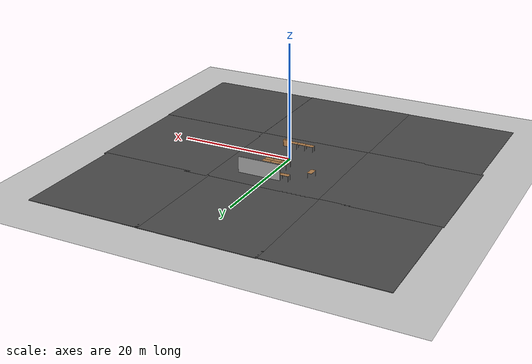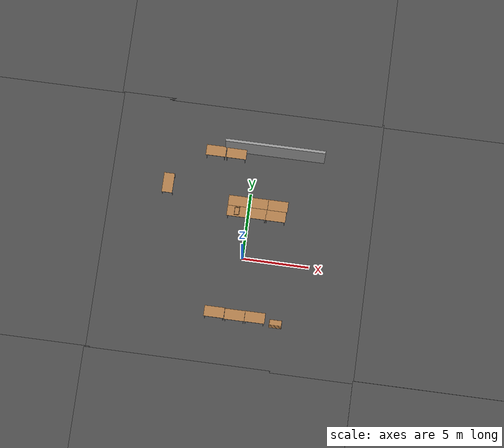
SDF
<sdf version="1.6">
 <world name="default">
  <light name="sun" type="directional">
   <pose>0 0 10 0 -0 0</pose>
   <diffuse>0.8 0.8 0.8 1</diffuse>
   <specular>0.2 0.2 0.2 1</specular>
   <attenuation>
    <range>1000</range>
    <constant>0.9</constant>
    <linear>0.01</linear>
    <quadratic>0.001</quadratic>
   </attenuation>
   <direction>-0.5 0.1 -0.9</direction>
  </light>
  <model name="ground_plane">
   <static>1</static>
   <link name="link">
    <collision name="collision">
     <geometry><plane><normal>0 0 1</normal><size>100 100</size></plane></geometry>
     <surface><friction><ode><mu>100</mu><mu2>50</mu2></ode></friction></surface>
    </collision>
    <visual name="visual">
     <cast_shadows>0</cast_shadows>
     <geometry><plane><normal>0 0 1</normal><size>100 100</size></plane></geometry>
     <material>
      <script><uri>file://media/materials/scripts/gazebo.material</uri><name>Gazebo/Grey</name></script>
     </material>
    </visual>
   </link>
  </model>
  <gravity>0 0 -9.8</gravity>
  <magnetic_field>6e-06 2.3e-05 -4.2e-05</magnetic_field>
  <atmosphere type="adiabatic"/>
  <physics name="default_physics" default="0" type="ode">
   <max_step_size>0.001</max_step_size>
   <real_time_factor>1</real_time_factor>
   <real_time_update_rate>1000</real_time_update_rate>
  </physics>
  <scene><ambient>0.4 0.4 0.4 1</ambient><background>0.7 0.7 0.7 1</background><shadows>1</shadows></scene>
  <spherical_coordinates>
   <surface_model>EARTH_WGS84</surface_model>
   <latitude_deg>0</latitude_deg>
   <longitude_deg>0</longitude_deg>
   <elevation>0</elevation>
   <heading_deg>0</heading_deg>
  </spherical_coordinates>
  <model name="table">
   <static>1</static>
   <link name="link">
    <collision name="surface">
     <pose>0 0 1 0 -0 0</pose>
     <geometry><box><size>1.5 0.8 0.03</size></box></geometry>
     <surface><friction><ode><mu>0.6</mu><mu2>0.6</mu2></ode></friction></surface>
    </collision>
    <visual name="visual1">
     <pose>0 0 1 0 -0 0</pose>
     <geometry><box><size>1.5 0.8 0.03</size></box></geometry>
     <material>
      <script><uri>file://media/materials/scripts/gazebo.material</uri><name>Gazebo/Wood</name></script>
     </material>
    </visual>
    <collision name="front_left_leg">
     <pose>0.68 0.38 0.5 0 -0 0</pose>
     <geometry><cylinder><radius>0.02</radius><length>1</length></cylinder></geometry>
    </collision>
    <visual name="front_left_leg">
     <pose>0.68 0.38 0.5 0 -0 0</pose>
     <geometry><cylinder><radius>0.02</radius><length>1</length></cylinder></geometry>
     <material>
      <script><uri>file://media/materials/scripts/gazebo.material</uri><name>Gazebo/Grey</name></script>
     </material>
    </visual>
    <collision name="front_right_leg">
     <pose>0.68 -0.38 0.5 0 -0 0</pose>
     <geometry><cylinder><radius>0.02</radius><length>1</length></cylinder></geometry>
    </collision>
    <visual name="front_right_leg">
     <pose>0.68 -0.38 0.5 0 -0 0</pose>
     <geometry><cylinder><radius>0.02</radius><length>1</length></cylinder></geometry>
     <material>
      <script><uri>file://media/materials/scripts/gazebo.material</uri><name>Gazebo/Grey</name></script>
     </material>
    </visual>
    <collision name="back_right_leg">
     <pose>-0.68 -0.38 0.5 0 -0 0</pose>
     <geometry><cylinder><radius>0.02</radius><length>1</length></cylinder></geometry>
    </collision>
    <visual name="back_right_leg">
     <pose>-0.68 -0.38 0.5 0 -0 0</pose>
     <geometry><cylinder><radius>0.02</radius><length>1</length></cylinder></geometry>
     <material>
      <script><uri>file://media/materials/scripts/gazebo.material</uri><name>Gazebo/Grey</name></script>
     </material>
    </visual>
    <collision name="back_left_leg">
     <pose>-0.68 0.38 0.5 0 -0 0</pose>
     <geometry><cylinder><radius>0.02</radius><length>1</length></cylinder></geometry>
    </collision>
    <visual name="back_left_leg">
     <pose>-0.68 0.38 0.5 0 -0 0</pose>
     <geometry><cylinder><radius>0.02</radius><length>1</length></cylinder></geometry>
     <material>
      <script><uri>file://media/materials/scripts/gazebo.material</uri><name>Gazebo/Grey</name></script>
     </material>
    </visual>
   </link>
   <pose>0.636841 4.14082 0 0 -0 0</pose>
  </model>
  <model name="bookshelf">
   <static>1</static>
   <link name="link">
    <inertial><mass>1</mass></inertial>
    <collision name="back">
     <pose>0 0.005 0.6 0 -0 0</pose>
     <geometry><box><size>0.9 0.01 1.2</size></box></geometry>
    </collision>
    <visual name="visual1">
     <pose>0 0.005 0.6 0 -0 0</pose>
     <geometry><box><size>0.9 0.01 1.2</size></box></geometry>
     <material>
      <script><uri>file://media/materials/scripts/gazebo.material</uri><name>Gazebo/Wood</name></script>
     </material>
    </visual>
    <collision name="left_side">
     <pose>0.45 -0.195 0.6 0 -0 0</pose>
     <geometry><box><size>0.02 0.4 1.2</size></box></geometry>
    </collision>
    <visual name="visual2">
     <pose>0.45 -0.195 0.6 0 -0 0</pose>
     <geometry><box><size>0.02 0.4 1.2</size></box></geometry>
     <material>
      <script><uri>file://media/materials/scripts/gazebo.material</uri><name>Gazebo/Wood</name></script>
     </material>
    </visual>
    <collision name="right_side">
     <pose>-0.45 -0.195 0.6 0 -0 0</pose>
     <geometry><box><size>0.02 0.4 1.2</size></box></geometry>
    </collision>
    <visual name="visual3">
     <pose>-0.45 -0.195 0.6 0 -0 0</pose>
     <geometry><box><size>0.02 0.4 1.2</size></box></geometry>
     <material>
      <script><uri>file://media/materials/scripts/gazebo.material</uri><name>Gazebo/Wood</name></script>
     </material>
    </visual>
    <collision name="bottom">
     <pose>0 -0.195 0.03 0 -0 0</pose>
     <geometry><box><size>0.88 0.4 0.06</size></box></geometry>
    </collision>
    <visual name="visual4">
     <pose>0 -0.195 0.03 0 -0 0</pose>
     <geometry><box><size>0.88 0.4 0.06</size></box></geometry>
     <material>
      <script><uri>file://media/materials/scripts/gazebo.material</uri><name>Gazebo/Wood</name></script>
     </material>
    </visual>
    <collision name="top">
     <pose>0 -0.195 1.19 0 -0 0</pose>
     <geometry><box><size>0.88 0.4 0.02</size></box></geometry>
    </collision>
    <visual name="visual5">
     <pose>0 -0.195 1.19 0 -0 0</pose>
     <geometry><box><size>0.88 0.4 0.02</size></box></geometry>
     <material>
      <script><uri>file://media/materials/scripts/gazebo.material</uri><name>Gazebo/Wood</name></script>
     </material>
    </visual>
    <collision name="low_shelf">
     <pose>0 -0.195 0.43 0 -0 0</pose>
     <geometry><box><size>0.88 0.4 0.02</size></box></geometry>
    </collision>
    <visual name="visual6">
     <pose>0 -0.195 0.43 0 -0 0</pose>
     <geometry><box><size>0.88 0.4 0.02</size></box></geometry>
     <material>
      <script><uri>file://media/materials/scripts/gazebo.material</uri><name>Gazebo/Wood</name></script>
     </material>
    </visual>
    <collision name="high_shelf">
     <pose>0 -0.195 0.8 0 -0 0</pose>
     <geometry><box><size>0.88 0.4 0.02</size></box></geometry>
    </collision>
    <visual name="visual7">
     <pose>0 -0.195 0.8 0 -0 0</pose>
     <geometry><box><size>0.88 0.4 0.02</size></box></geometry>
     <material>
      <script><uri>file://media/materials/scripts/gazebo.material</uri><name>Gazebo/Wood</name></script>
     </material>
    </visual>
   </link>
   <pose>3.08493 -4.48797 0 0 -0 0</pose>
  </model>
  <model name="grey_wall">
   <static>1</static>
   <link name="link">
    <pose>0 0 1.4 0 -0 0</pose>
    <collision name="collision"><geometry><box><size>7.5 0.2 2.8</size></box></geometry></collision>
    <visual name="visual">
     <cast_shadows>0</cast_shadows>
     <geometry><box><size>7.5 0.2 2.8</size></box></geometry>
     <material>
      <script>
       <uri>model://grey_wall/materials/scripts</uri>
       <uri>model://grey_wall/materials/textures</uri>
       <name>vrc/grey_wall</name>
      </script>
     </material>
    </visual>
   </link>
   <pose>1.40608 8.24662 0 0 -0 0</pose>
  </model>
  <model name="table_0">
   <static>1</static>
   <link name="link">
    <collision name="surface">
     <pose>0 0 1 0 -0 0</pose>
     <geometry><box><size>1.5 0.8 0.03</size></box></geometry>
     <surface><friction><ode><mu>0.6</mu><mu2>0.6</mu2></ode></friction></surface>
    </collision>
    <visual name="visual1">
     <pose>0 0 1 0 -0 0</pose>
     <geometry><box><size>1.5 0.8 0.03</size></box></geometry>
     <material>
      <script><uri>file://media/materials/scripts/gazebo.material</uri><name>Gazebo/Wood</name></script>
     </material>
    </visual>
    <collision name="front_left_leg">
     <pose>0.68 0.38 0.5 0 -0 0</pose>
     <geometry><cylinder><radius>0.02</radius><length>1</length></cylinder></geometry>
    </collision>
    <visual name="front_left_leg">
     <pose>0.68 0.38 0.5 0 -0 0</pose>
     <geometry><cylinder><radius>0.02</radius><length>1</length></cylinder></geometry>
     <material>
      <script><uri>file://media/materials/scripts/gazebo.material</uri><name>Gazebo/Grey</name></script>
     </material>
    </visual>
    <collision name="front_right_leg">
     <pose>0.68 -0.38 0.5 0 -0 0</pose>
     <geometry><cylinder><radius>0.02</radius><length>1</length></cylinder></geometry>
    </collision>
    <visual name="front_right_leg">
     <pose>0.68 -0.38 0.5 0 -0 0</pose>
     <geometry><cylinder><radius>0.02</radius><length>1</length></cylinder></geometry>
     <material>
      <script><uri>file://media/materials/scripts/gazebo.material</uri><name>Gazebo/Grey</name></script>
     </material>
    </visual>
    <collision name="back_right_leg">
     <pose>-0.68 -0.38 0.5 0 -0 0</pose>
     <geometry><cylinder><radius>0.02</radius><length>1</length></cylinder></geometry>
    </collision>
    <visual name="back_right_leg">
     <pose>-0.68 -0.38 0.5 0 -0 0</pose>
     <geometry><cylinder><radius>0.02</radius><length>1</length></cylinder></geometry>
     <material>
      <script><uri>file://media/materials/scripts/gazebo.material</uri><name>Gazebo/Grey</name></script>
     </material>
    </visual>
    <collision name="back_left_leg">
     <pose>-0.68 0.38 0.5 0 -0 0</pose>
     <geometry><cylinder><radius>0.02</radius><length>1</length></cylinder></geometry>
    </collision>
    <visual name="back_left_leg">
     <pose>-0.68 0.38 0.5 0 -0 0</pose>
     <geometry><cylinder><radius>0.02</radius><length>1</length></cylinder></geometry>
     <material>
      <script><uri>file://media/materials/scripts/gazebo.material</uri><name>Gazebo/Grey</name></script>
     </material>
    </visual>
   </link>
   <pose>2.07868 3.34624 0 0 -0 0</pose>
  </model>
  <model name="table_1">
   <static>1</static>
   <link name="link">
    <collision name="surface">
     <pose>0 0 1 0 -0 0</pose>
     <geometry><box><size>1.5 0.8 0.03</size></box></geometry>
     <surface><friction><ode><mu>0.6</mu><mu2>0.6</mu2></ode></friction></surface>
    </collision>
    <visual name="visual1">
     <pose>0 0 1 0 -0 0</pose>
     <geometry><box><size>1.5 0.8 0.03</size></box></geometry>
     <material>
      <script><uri>file://media/materials/scripts/gazebo.material</uri><name>Gazebo/Wood</name></script>
     </material>
    </visual>
    <collision name="front_left_leg">
     <pose>0.68 0.38 0.5 0 -0 0</pose>
     <geometry><cylinder><radius>0.02</radius><length>1</length></cylinder></geometry>
    </collision>
    <visual name="front_left_leg">
     <pose>0.68 0.38 0.5 0 -0 0</pose>
     <geometry><cylinder><radius>0.02</radius><length>1</length></cylinder></geometry>
     <material>
      <script><uri>file://media/materials/scripts/gazebo.material</uri><name>Gazebo/Grey</name></script>
     </material>
    </visual>
    <collision name="front_right_leg">
     <pose>0.68 -0.38 0.5 0 -0 0</pose>
     <geometry><cylinder><radius>0.02</radius><length>1</length></cylinder></geometry>
    </collision>
    <visual name="front_right_leg">
     <pose>0.68 -0.38 0.5 0 -0 0</pose>
     <geometry><cylinder><radius>0.02</radius><length>1</length></cylinder></geometry>
     <material>
      <script><uri>file://media/materials/scripts/gazebo.material</uri><name>Gazebo/Grey</name></script>
     </material>
    </visual>
    <collision name="back_right_leg">
     <pose>-0.68 -0.38 0.5 0 -0 0</pose>
     <geometry><cylinder><radius>0.02</radius><length>1</length></cylinder></geometry>
    </collision>
    <visual name="back_right_leg">
     <pose>-0.68 -0.38 0.5 0 -0 0</pose>
     <geometry><cylinder><radius>0.02</radius><length>1</length></cylinder></geometry>
     <material>
      <script><uri>file://media/materials/scripts/gazebo.material</uri><name>Gazebo/Grey</name></script>
     </material>
    </visual>
    <collision name="back_left_leg">
     <pose>-0.68 0.38 0.5 0 -0 0</pose>
     <geometry><cylinder><radius>0.02</radius><length>1</length></cylinder></geometry>
    </collision>
    <visual name="back_left_leg">
     <pose>-0.68 0.38 0.5 0 -0 0</pose>
     <geometry><cylinder><radius>0.02</radius><length>1</length></cylinder></geometry>
     <material>
      <script><uri>file://media/materials/scripts/gazebo.material</uri><name>Gazebo/Grey</name></script>
     </material>
    </visual>
   </link>
   <pose>0.614823 3.35711 0 0 -0 0</pose>
  </model>
  <model name="table_2">
   <static>1</static>
   <link name="link">
    <collision name="surface">
     <pose>0 0 1 0 -0 0</pose>
     <geometry><box><size>1.5 0.8 0.03</size></box></geometry>
     <surface><friction><ode><mu>0.6</mu><mu2>0.6</mu2></ode></friction></surface>
    </collision>
    <visual name="visual1">
     <pose>0 0 1 0 -0 0</pose>
     <geometry><box><size>1.5 0.8 0.03</size></box></geometry>
     <material>
      <script><uri>file://media/materials/scripts/gazebo.material</uri><name>Gazebo/Wood</name></script>
     </material>
    </visual>
    <collision name="front_left_leg">
     <pose>0.68 0.38 0.5 0 -0 0</pose>
     <geometry><cylinder><radius>0.02</radius><length>1</length></cylinder></geometry>
    </collision>
    <visual name="front_left_leg">
     <pose>0.68 0.38 0.5 0 -0 0</pose>
     <geometry><cylinder><radius>0.02</radius><length>1</length></cylinder></geometry>
     <material>
      <script><uri>file://media/materials/scripts/gazebo.material</uri><name>Gazebo/Grey</name></script>
     </material>
    </visual>
    <collision name="front_right_leg">
     <pose>0.68 -0.38 0.5 0 -0 0</pose>
     <geometry><cylinder><radius>0.02</radius><length>1</length></cylinder></geometry>
    </collision>
    <visual name="front_right_leg">
     <pose>0.68 -0.38 0.5 0 -0 0</pose>
     <geometry><cylinder><radius>0.02</radius><length>1</length></cylinder></geometry>
     <material>
      <script><uri>file://media/materials/scripts/gazebo.material</uri><name>Gazebo/Grey</name></script>
     </material>
    </visual>
    <collision name="back_right_leg">
     <pose>-0.68 -0.38 0.5 0 -0 0</pose>
     <geometry><cylinder><radius>0.02</radius><length>1</length></cylinder></geometry>
    </collision>
    <visual name="back_right_leg">
     <pose>-0.68 -0.38 0.5 0 -0 0</pose>
     <geometry><cylinder><radius>0.02</radius><length>1</length></cylinder></geometry>
     <material>
      <script><uri>file://media/materials/scripts/gazebo.material</uri><name>Gazebo/Grey</name></script>
     </material>
    </visual>
    <collision name="back_left_leg">
     <pose>-0.68 0.38 0.5 0 -0 0</pose>
     <geometry><cylinder><radius>0.02</radius><length>1</length></cylinder></geometry>
    </collision>
    <visual name="back_left_leg">
     <pose>-0.68 0.38 0.5 0 -0 0</pose>
     <geometry><cylinder><radius>0.02</radius><length>1</length></cylinder></geometry>
     <material>
      <script><uri>file://media/materials/scripts/gazebo.material</uri><name>Gazebo/Grey</name></script>
     </material>
    </visual>
   </link>
   <pose>2.14169 4.14495 0 0 -0 0</pose>
  </model>
  <model name="table_3">
   <static>1</static>
   <link name="link">
    <collision name="surface">
     <pose>0 0 1 0 -0 0</pose>
     <geometry><box><size>1.5 0.8 0.03</size></box></geometry>
     <surface><friction><ode><mu>0.6</mu><mu2>0.6</mu2></ode></friction></surface>
    </collision>
    <visual name="visual1">
     <pose>0 0 1 0 -0 0</pose>
     <geometry><box><size>1.5 0.8 0.03</size></box></geometry>
     <material>
      <script><uri>file://media/materials/scripts/gazebo.material</uri><name>Gazebo/Wood</name></script>
     </material>
    </visual>
    <collision name="front_left_leg">
     <pose>0.68 0.38 0.5 0 -0 0</pose>
     <geometry><cylinder><radius>0.02</radius><length>1</length></cylinder></geometry>
    </collision>
    <visual name="front_left_leg">
     <pose>0.68 0.38 0.5 0 -0 0</pose>
     <geometry><cylinder><radius>0.02</radius><length>1</length></cylinder></geometry>
     <material>
      <script><uri>file://media/materials/scripts/gazebo.material</uri><name>Gazebo/Grey</name></script>
     </material>
    </visual>
    <collision name="front_right_leg">
     <pose>0.68 -0.38 0.5 0 -0 0</pose>
     <geometry><cylinder><radius>0.02</radius><length>1</length></cylinder></geometry>
    </collision>
    <visual name="front_right_leg">
     <pose>0.68 -0.38 0.5 0 -0 0</pose>
     <geometry><cylinder><radius>0.02</radius><length>1</length></cylinder></geometry>
     <material>
      <script><uri>file://media/materials/scripts/gazebo.material</uri><name>Gazebo/Grey</name></script>
     </material>
    </visual>
    <collision name="back_right_leg">
     <pose>-0.68 -0.38 0.5 0 -0 0</pose>
     <geometry><cylinder><radius>0.02</radius><length>1</length></cylinder></geometry>
    </collision>
    <visual name="back_right_leg">
     <pose>-0.68 -0.38 0.5 0 -0 0</pose>
     <geometry><cylinder><radius>0.02</radius><length>1</length></cylinder></geometry>
     <material>
      <script><uri>file://media/materials/scripts/gazebo.material</uri><name>Gazebo/Grey</name></script>
     </material>
    </visual>
    <collision name="back_left_leg">
     <pose>-0.68 0.38 0.5 0 -0 0</pose>
     <geometry><cylinder><radius>0.02</radius><length>1</length></cylinder></geometry>
    </collision>
    <visual name="back_left_leg">
     <pose>-0.68 0.38 0.5 0 -0 0</pose>
     <geometry><cylinder><radius>0.02</radius><length>1</length></cylinder></geometry>
     <material>
      <script><uri>file://media/materials/scripts/gazebo.material</uri><name>Gazebo/Grey</name></script>
     </material>
    </visual>
   </link>
   <pose>1.5233 -4.44873 0 0 -0 0</pose>
  </model>
  <model name="wooden_case">
   <link name="base">
    <pose>0 0 0.024 0 -0 0</pose>
    <inertial>
     <pose>-0.022184 0 0.171592 0 -0 0</pose>
     <mass>3.96264</mass>
     <inertia>
      <ixx>0.213536</ixx>
      <ixy>0</ixy>
      <ixz>0.000779377</ixz>
      <iyy>0.0708943</iyy>
      <iyz>0</iyz>
      <izz>0.154604</izz>
     </inertia>
    </inertial>
    <collision name="collision_back">
     <pose>-0.053975 0 0.1778 0 -0 0</pose>
     <geometry><box><size>0.01905 0.5461 0.3175</size></box></geometry>
     <surface>
      <contact>
       <poissons_ratio>0.347</poissons_ratio>
       <elastic_modulus>8.8e+09</elastic_modulus>
       <ode><kp>100000</kp><kd>100</kd><max_vel>100</max_vel><min_depth>0.001</min_depth></ode>
      </contact>
      <friction>
       <torsional>
        <coefficient>1</coefficient>
        <use_patch_radius>0</use_patch_radius>
        <surface_radius>0.01</surface_radius>
       </torsional>
      </friction>
     </surface>
    </collision>
    <visual name="visual_back">
     <pose>-0.053975 0 0.1778 0 -0 0</pose>
     <geometry><box><size>0.01905 0.5461 0.3175</size></box></geometry>
     <material>
      <script><uri>file://media/materials/scripts/gazebo.material</uri><name>Gazebo/Wood</name></script>
     </material>
    </visual>
    <collision name="collision_bottom">
     <pose>0 0 0.009525 0 -0 0</pose>
     <geometry><box><size>0.127 0.5842 0.01905</size></box></geometry>
     <surface>
      <contact>
       <poissons_ratio>0.347</poissons_ratio>
       <elastic_modulus>8.8e+09</elastic_modulus>
       <ode><kp>100000</kp><kd>100</kd><max_vel>100</max_vel><min_depth>0.001</min_depth></ode>
      </contact>
      <friction>
       <torsional>
        <coefficient>1</coefficient>
        <use_patch_radius>0</use_patch_radius>
        <surface_radius>0.01</surface_radius>
       </torsional>
      </friction>
     </surface>
    </collision>
    <visual name="visual_bottom">
     <pose>0 0 0.009525 0 -0 0</pose>
     <geometry><box><size>0.127 0.5842 0.01905</size></box></geometry>
     <material>
      <script><uri>file://media/materials/scripts/gazebo.material</uri><name>Gazebo/Wood</name></script>
     </material>
    </visual>
    <collision name="collision_top">
     <pose>0 0 0.346075 0 -0 0</pose>
     <geometry><box><size>0.127 0.5842 0.01905</size></box></geometry>
     <surface>
      <contact>
       <poissons_ratio>0.347</poissons_ratio>
       <elastic_modulus>8.8e+09</elastic_modulus>
       <ode><kp>100000</kp><kd>100</kd><max_vel>100</max_vel><min_depth>0.001</min_depth></ode>
      </contact>
      <friction>
       <torsional>
        <coefficient>1</coefficient>
        <use_patch_radius>0</use_patch_radius>
        <surface_radius>0.01</surface_radius>
       </torsional>
      </friction>
     </surface>
    </collision>
    <visual name="visual_top">
     <pose>0 0 0.346075 0 -0 0</pose>
     <geometry><box><size>0.127 0.5842 0.01905</size></box></geometry>
     <material>
      <script><uri>file://media/materials/scripts/gazebo.material</uri><name>Gazebo/Wood</name></script>
     </material>
    </visual>
    <collision name="collision_left">
     <pose>0 -0.282575 0.1778 0 -0 0</pose>
     <geometry><box><size>0.127 0.01905 0.3175</size></box></geometry>
     <surface>
      <contact>
       <poissons_ratio>0.347</poissons_ratio>
       <elastic_modulus>8.8e+09</elastic_modulus>
       <ode><kp>100000</kp><kd>100</kd><max_vel>100</max_vel><min_depth>0.001</min_depth></ode>
      </contact>
      <friction>
       <torsional>
        <coefficient>1</coefficient>
        <use_patch_radius>0</use_patch_radius>
        <surface_radius>0.01</surface_radius>
       </torsional>
      </friction>
     </surface>
    </collision>
    <visual name="visual_left">
     <pose>0 -0.282575 0.1778 0 -0 0</pose>
     <geometry><box><size>0.127 0.01905 0.3175</size></box></geometry>
     <material>
      <script><uri>file://media/materials/scripts/gazebo.material</uri><name>Gazebo/Wood</name></script>
     </material>
    </visual>
    <collision name="collision_right">
     <pose>0 0.282575 0.1778 0 -0 0</pose>
     <geometry><box><size>0.127 0.01905 0.3175</size></box></geometry>
     <surface>
      <contact>
       <poissons_ratio>0.347</poissons_ratio>
       <elastic_modulus>8.8e+09</elastic_modulus>
       <ode><kp>100000</kp><kd>100</kd><max_vel>100</max_vel><min_depth>0.001</min_depth></ode>
      </contact>
      <friction>
       <torsional>
        <coefficient>1</coefficient>
        <use_patch_radius>0</use_patch_radius>
        <surface_radius>0.01</surface_radius>
       </torsional>
      </friction>
     </surface>
    </collision>
    <visual name="visual_right">
     <pose>0 0.282575 0.1778 0 -0 0</pose>
     <geometry><box><size>0.127 0.01905 0.3175</size></box></geometry>
     <material>
      <script><uri>file://media/materials/scripts/gazebo.material</uri><name>Gazebo/Wood</name></script>
     </material>
    </visual>
    <collision name="collision_block_left">
     <pose>0.0095 -0.2151 -0.012 0 -0 0</pose>
     <geometry><box><size>0.108 0.05 0.024</size></box></geometry>
     <surface>
      <contact>
       <poissons_ratio>0.347</poissons_ratio>
       <elastic_modulus>8.8e+09</elastic_modulus>
       <ode><kp>100000</kp><kd>100</kd><max_vel>100</max_vel><min_depth>0.001</min_depth></ode>
      </contact>
      <friction>
       <torsional>
        <coefficient>1</coefficient>
        <use_patch_radius>0</use_patch_radius>
        <surface_radius>0.01</surface_radius>
       </torsional>
      </friction>
     </surface>
    </collision>
    <visual name="visual_block_left">
     <pose>0.0095 -0.2151 -0.012 0 -0 0</pose>
     <geometry><box><size>0.108 0.05 0.024</size></box></geometry>
     <material>
      <script><uri>file://media/materials/scripts/gazebo.material</uri><name>Gazebo/Wood</name></script>
     </material>
    </visual>
    <collision name="collision_block_right">
     <pose>0.0095 0.2151 -0.012 0 -0 0</pose>
     <geometry><box><size>0.108 0.05 0.024</size></box></geometry>
     <surface>
      <contact>
       <poissons_ratio>0.347</poissons_ratio>
       <elastic_modulus>8.8e+09</elastic_modulus>
       <ode><kp>100000</kp><kd>100</kd><max_vel>100</max_vel><min_depth>0.001</min_depth></ode>
      </contact>
      <friction>
       <torsional>
        <coefficient>1</coefficient>
        <use_patch_radius>0</use_patch_radius>
        <surface_radius>0.01</surface_radius>
       </torsional>
      </friction>
     </surface>
    </collision>
    <visual name="visual_block_right">
     <pose>0.0095 0.2151 -0.012 0 -0 0</pose>
     <geometry><box><size>0.108 0.05 0.024</size></box></geometry>
     <material>
      <script><uri>file://media/materials/scripts/gazebo.material</uri><name>Gazebo/Wood</name></script>
     </material>
    </visual>
   </link>
   <link name="lid">
    <pose>0.243775 0 0.009525 0 -0 0</pose>
    <inertial>
     <mass>1.97874</mass>
     <inertia>
      <ixx>0.0563367</ixx>
      <ixy>0</ixy>
      <ixz>0</ixz>
      <iyy>0.020911</iyy>
      <iyz>0</iyz>
      <izz>0.0771281</izz>
     </inertia>
    </inertial>
    <collision name="collision">
     <geometry><box><size>0.3556 0.5842 0.01905</size></box></geometry>
     <surface>
      <contact>
       <poissons_ratio>0.347</poissons_ratio>
       <elastic_modulus>8.8e+09</elastic_modulus>
       <ode><kp>100000</kp><kd>100</kd><max_vel>100</max_vel><min_depth>0.001</min_depth></ode>
      </contact>
      <friction>
       <torsional>
        <coefficient>1</coefficient>
        <use_patch_radius>0</use_patch_radius>
        <surface_radius>0.01</surface_radius>
       </torsional>
      </friction>
     </surface>
    </collision>
    <visual name="visual">
     <geometry><box><size>0.3556 0.5842 0.01905</size></box></geometry>
     <material>
      <script><uri>file://media/materials/scripts/gazebo.material</uri><name>Gazebo/Wood</name></script>
     </material>
    </visual>
    <visual name="tee_nut_1">
     <pose>0.122 -0.216 0 0 -0 0</pose>
     <geometry><cylinder><radius>0.00635</radius><length>0.0192405</length></cylinder></geometry>
     <material>
      <script><uri>file://media/materials/scripts/gazebo.material</uri><name>Gazebo/Grey</name></script>
     </material>
    </visual>
    <visual name="tee_nut_2">
     <pose>0.122 -0.088 0 0 -0 0</pose>
     <geometry><cylinder><radius>0.00635</radius><length>0.0192405</length></cylinder></geometry>
     <material>
      <script><uri>file://media/materials/scripts/gazebo.material</uri><name>Gazebo/Grey</name></script>
     </material>
    </visual>
    <visual name="tee_nut_3">
     <pose>0.122 0.088 0 0 -0 0</pose>
     <geometry><cylinder><radius>0.00635</radius><length>0.0192405</length></cylinder></geometry>
     <material>
      <script><uri>file://media/materials/scripts/gazebo.material</uri><name>Gazebo/Grey</name></script>
     </material>
    </visual>
    <visual name="tee_nut_4">
     <pose>0.122 0.216 0 0 -0 0</pose>
     <geometry><cylinder><radius>0.00635</radius><length>0.0192405</length></cylinder></geometry>
     <material>
      <script><uri>file://media/materials/scripts/gazebo.material</uri><name>Gazebo/Grey</name></script>
     </material>
    </visual>
   </link>
   <joint name="lid_hinge" type="revolute">
    <pose>-0.1778 0 0.01905 0 -0 0</pose>
    <parent>base</parent>
    <child>lid</child>
    <axis>
     <xyz>0 1 0</xyz>
     <limit><upper>0.523599</upper><lower>-1.5708</lower></limit>
     <use_parent_model_frame>0</use_parent_model_frame>
     <dynamics><spring_reference>0</spring_reference><spring_stiffness>0</spring_stiffness></dynamics>
    </axis>
   </joint>
   <pose>-0.660713 3.35859 1.07747 0 -1.57079 -0.003021</pose>
  </model>
  <model name="table_clone">
   <static>1</static>
   <link name="link">
    <collision name="surface">
     <pose>0 0 1 0 -0 0</pose>
     <geometry><box><size>1.5 0.8 0.03</size></box></geometry>
     <surface><friction><ode><mu>0.6</mu><mu2>0.6</mu2></ode></friction></surface>
    </collision>
    <visual name="visual1">
     <pose>0 0 1 0 -0 0</pose>
     <geometry><box><size>1.5 0.8 0.03</size></box></geometry>
     <material>
      <script><uri>file://media/materials/scripts/gazebo.material</uri><name>Gazebo/Wood</name></script>
     </material>
    </visual>
    <collision name="front_left_leg">
     <pose>0.68 0.38 0.5 0 -0 0</pose>
     <geometry><cylinder><radius>0.02</radius><length>1</length></cylinder></geometry>
    </collision>
    <visual name="front_left_leg">
     <pose>0.68 0.38 0.5 0 -0 0</pose>
     <geometry><cylinder><radius>0.02</radius><length>1</length></cylinder></geometry>
     <material>
      <script><uri>file://media/materials/scripts/gazebo.material</uri><name>Gazebo/Grey</name></script>
     </material>
    </visual>
    <collision name="front_right_leg">
     <pose>0.68 -0.38 0.5 0 -0 0</pose>
     <geometry><cylinder><radius>0.02</radius><length>1</length></cylinder></geometry>
    </collision>
    <visual name="front_right_leg">
     <pose>0.68 -0.38 0.5 0 -0 0</pose>
     <geometry><cylinder><radius>0.02</radius><length>1</length></cylinder></geometry>
     <material>
      <script><uri>file://media/materials/scripts/gazebo.material</uri><name>Gazebo/Grey</name></script>
     </material>
    </visual>
    <collision name="back_right_leg">
     <pose>-0.68 -0.38 0.5 0 -0 0</pose>
     <geometry><cylinder><radius>0.02</radius><length>1</length></cylinder></geometry>
    </collision>
    <visual name="back_right_leg">
     <pose>-0.68 -0.38 0.5 0 -0 0</pose>
     <geometry><cylinder><radius>0.02</radius><length>1</length></cylinder></geometry>
     <material>
      <script><uri>file://media/materials/scripts/gazebo.material</uri><name>Gazebo/Grey</name></script>
     </material>
    </visual>
    <collision name="back_left_leg">
     <pose>-0.68 0.38 0.5 0 -0 0</pose>
     <geometry><cylinder><radius>0.02</radius><length>1</length></cylinder></geometry>
    </collision>
    <visual name="back_left_leg">
     <pose>-0.68 0.38 0.5 0 -0 0</pose>
     <geometry><cylinder><radius>0.02</radius><length>1</length></cylinder></geometry>
     <material>
      <script><uri>file://media/materials/scripts/gazebo.material</uri><name>Gazebo/Grey</name></script>
     </material>
    </visual>
   </link>
   <pose>-3.01664 7.79625 0 0 -0 0</pose>
  </model>
  <model name="table_clone_0">
   <static>1</static>
   <link name="link">
    <collision name="surface">
     <pose>0 0 1 0 -0 0</pose>
     <geometry><box><size>1.5 0.8 0.03</size></box></geometry>
     <surface><friction><ode><mu>0.6</mu><mu2>0.6</mu2></ode></friction></surface>
    </collision>
    <visual name="visual1">
     <pose>0 0 1 0 -0 0</pose>
     <geometry><box><size>1.5 0.8 0.03</size></box></geometry>
     <material>
      <script><uri>file://media/materials/scripts/gazebo.material</uri><name>Gazebo/Wood</name></script>
     </material>
    </visual>
    <collision name="front_left_leg">
     <pose>0.68 0.38 0.5 0 -0 0</pose>
     <geometry><cylinder><radius>0.02</radius><length>1</length></cylinder></geometry>
    </collision>
    <visual name="front_left_leg">
     <pose>0.68 0.38 0.5 0 -0 0</pose>
     <geometry><cylinder><radius>0.02</radius><length>1</length></cylinder></geometry>
     <material>
      <script><uri>file://media/materials/scripts/gazebo.material</uri><name>Gazebo/Grey</name></script>
     </material>
    </visual>
    <collision name="front_right_leg">
     <pose>0.68 -0.38 0.5 0 -0 0</pose>
     <geometry><cylinder><radius>0.02</radius><length>1</length></cylinder></geometry>
    </collision>
    <visual name="front_right_leg">
     <pose>0.68 -0.38 0.5 0 -0 0</pose>
     <geometry><cylinder><radius>0.02</radius><length>1</length></cylinder></geometry>
     <material>
      <script><uri>file://media/materials/scripts/gazebo.material</uri><name>Gazebo/Grey</name></script>
     </material>
    </visual>
    <collision name="back_right_leg">
     <pose>-0.68 -0.38 0.5 0 -0 0</pose>
     <geometry><cylinder><radius>0.02</radius><length>1</length></cylinder></geometry>
    </collision>
    <visual name="back_right_leg">
     <pose>-0.68 -0.38 0.5 0 -0 0</pose>
     <geometry><cylinder><radius>0.02</radius><length>1</length></cylinder></geometry>
     <material>
      <script><uri>file://media/materials/scripts/gazebo.material</uri><name>Gazebo/Grey</name></script>
     </material>
    </visual>
    <collision name="back_left_leg">
     <pose>-0.68 0.38 0.5 0 -0 0</pose>
     <geometry><cylinder><radius>0.02</radius><length>1</length></cylinder></geometry>
    </collision>
    <visual name="back_left_leg">
     <pose>-0.68 0.38 0.5 0 -0 0</pose>
     <geometry><cylinder><radius>0.02</radius><length>1</length></cylinder></geometry>
     <material>
      <script><uri>file://media/materials/scripts/gazebo.material</uri><name>Gazebo/Grey</name></script>
     </material>
    </visual>
   </link>
   <pose>-1.46465 7.79384 0 0 -0 0</pose>
  </model>
  <model name="table_clone_1">
   <static>1</static>
   <link name="link">
    <collision name="surface">
     <pose>0 0 1 0 -0 0</pose>
     <geometry><box><size>1.5 0.8 0.03</size></box></geometry>
     <surface><friction><ode><mu>0.6</mu><mu2>0.6</mu2></ode></friction></surface>
    </collision>
    <visual name="visual1">
     <pose>0 0 1 0 -0 0</pose>
     <geometry><box><size>1.5 0.8 0.03</size></box></geometry>
     <material>
      <script><uri>file://media/materials/scripts/gazebo.material</uri><name>Gazebo/Wood</name></script>
     </material>
    </visual>
    <collision name="front_left_leg">
     <pose>0.68 0.38 0.5 0 -0 0</pose>
     <geometry><cylinder><radius>0.02</radius><length>1</length></cylinder></geometry>
    </collision>
    <visual name="front_left_leg">
     <pose>0.68 0.38 0.5 0 -0 0</pose>
     <geometry><cylinder><radius>0.02</radius><length>1</length></cylinder></geometry>
     <material>
      <script><uri>file://media/materials/scripts/gazebo.material</uri><name>Gazebo/Grey</name></script>
     </material>
    </visual>
    <collision name="front_right_leg">
     <pose>0.68 -0.38 0.5 0 -0 0</pose>
     <geometry><cylinder><radius>0.02</radius><length>1</length></cylinder></geometry>
    </collision>
    <visual name="front_right_leg">
     <pose>0.68 -0.38 0.5 0 -0 0</pose>
     <geometry><cylinder><radius>0.02</radius><length>1</length></cylinder></geometry>
     <material>
      <script><uri>file://media/materials/scripts/gazebo.material</uri><name>Gazebo/Grey</name></script>
     </material>
    </visual>
    <collision name="back_right_leg">
     <pose>-0.68 -0.38 0.5 0 -0 0</pose>
     <geometry><cylinder><radius>0.02</radius><length>1</length></cylinder></geometry>
    </collision>
    <visual name="back_right_leg">
     <pose>-0.68 -0.38 0.5 0 -0 0</pose>
     <geometry><cylinder><radius>0.02</radius><length>1</length></cylinder></geometry>
     <material>
      <script><uri>file://media/materials/scripts/gazebo.material</uri><name>Gazebo/Grey</name></script>
     </material>
    </visual>
    <collision name="back_left_leg">
     <pose>-0.68 0.38 0.5 0 -0 0</pose>
     <geometry><cylinder><radius>0.02</radius><length>1</length></cylinder></geometry>
    </collision>
    <visual name="back_left_leg">
     <pose>-0.68 0.38 0.5 0 -0 0</pose>
     <geometry><cylinder><radius>0.02</radius><length>1</length></cylinder></geometry>
     <material>
      <script><uri>file://media/materials/scripts/gazebo.material</uri><name>Gazebo/Grey</name></script>
     </material>
    </visual>
   </link>
   <pose>-6.25219 4.86363 0 0 -0 1.56528</pose>
  </model>
  <model name="table_0_clone">
   <static>1</static>
   <link name="link">
    <collision name="surface">
     <pose>0 0 1 0 -0 0</pose>
     <geometry><box><size>1.5 0.8 0.03</size></box></geometry>
     <surface><friction><ode><mu>0.6</mu><mu2>0.6</mu2></ode></friction></surface>
    </collision>
    <visual name="visual1">
     <pose>0 0 1 0 -0 0</pose>
     <geometry><box><size>1.5 0.8 0.03</size></box></geometry>
     <material>
      <script><uri>file://media/materials/scripts/gazebo.material</uri><name>Gazebo/Wood</name></script>
     </material>
    </visual>
    <collision name="front_left_leg">
     <pose>0.68 0.38 0.5 0 -0 0</pose>
     <geometry><cylinder><radius>0.02</radius><length>1</length></cylinder></geometry>
    </collision>
    <visual name="front_left_leg">
     <pose>0.68 0.38 0.5 0 -0 0</pose>
     <geometry><cylinder><radius>0.02</radius><length>1</length></cylinder></geometry>
     <material>
      <script><uri>file://media/materials/scripts/gazebo.material</uri><name>Gazebo/Grey</name></script>
     </material>
    </visual>
    <collision name="front_right_leg">
     <pose>0.68 -0.38 0.5 0 -0 0</pose>
     <geometry><cylinder><radius>0.02</radius><length>1</length></cylinder></geometry>
    </collision>
    <visual name="front_right_leg">
     <pose>0.68 -0.38 0.5 0 -0 0</pose>
     <geometry><cylinder><radius>0.02</radius><length>1</length></cylinder></geometry>
     <material>
      <script><uri>file://media/materials/scripts/gazebo.material</uri><name>Gazebo/Grey</name></script>
     </material>
    </visual>
    <collision name="back_right_leg">
     <pose>-0.68 -0.38 0.5 0 -0 0</pose>
     <geometry><cylinder><radius>0.02</radius><length>1</length></cylinder></geometry>
    </collision>
    <visual name="back_right_leg">
     <pose>-0.68 -0.38 0.5 0 -0 0</pose>
     <geometry><cylinder><radius>0.02</radius><length>1</length></cylinder></geometry>
     <material>
      <script><uri>file://media/materials/scripts/gazebo.material</uri><name>Gazebo/Grey</name></script>
     </material>
    </visual>
    <collision name="back_left_leg">
     <pose>-0.68 0.38 0.5 0 -0 0</pose>
     <geometry><cylinder><radius>0.02</radius><length>1</length></cylinder></geometry>
    </collision>
    <visual name="back_left_leg">
     <pose>-0.68 0.38 0.5 0 -0 0</pose>
     <geometry><cylinder><radius>0.02</radius><length>1</length></cylinder></geometry>
     <material>
      <script><uri>file://media/materials/scripts/gazebo.material</uri><name>Gazebo/Grey</name></script>
     </material>
    </visual>
   </link>
   <pose>0.015195 -4.46066 0 0 -0 0</pose>
  </model>
  <model name="table_0_clone_0">
   <static>1</static>
   <link name="link">
    <collision name="surface">
     <pose>0 0 1 0 -0 0</pose>
     <geometry><box><size>1.5 0.8 0.03</size></box></geometry>
     <surface><friction><ode><mu>0.6</mu><mu2>0.6</mu2></ode></friction></surface>
    </collision>
    <visual name="visual1">
     <pose>0 0 1 0 -0 0</pose>
     <geometry><box><size>1.5 0.8 0.03</size></box></geometry>
     <material>
      <script><uri>file://media/materials/scripts/gazebo.material</uri><name>Gazebo/Wood</name></script>
     </material>
    </visual>
    <collision name="front_left_leg">
     <pose>0.68 0.38 0.5 0 -0 0</pose>
     <geometry><cylinder><radius>0.02</radius><length>1</length></cylinder></geometry>
    </collision>
    <visual name="front_left_leg">
     <pose>0.68 0.38 0.5 0 -0 0</pose>
     <geometry><cylinder><radius>0.02</radius><length>1</length></cylinder></geometry>
     <material>
      <script><uri>file://media/materials/scripts/gazebo.material</uri><name>Gazebo/Grey</name></script>
     </material>
    </visual>
    <collision name="front_right_leg">
     <pose>0.68 -0.38 0.5 0 -0 0</pose>
     <geometry><cylinder><radius>0.02</radius><length>1</length></cylinder></geometry>
    </collision>
    <visual name="front_right_leg">
     <pose>0.68 -0.38 0.5 0 -0 0</pose>
     <geometry><cylinder><radius>0.02</radius><length>1</length></cylinder></geometry>
     <material>
      <script><uri>file://media/materials/scripts/gazebo.material</uri><name>Gazebo/Grey</name></script>
     </material>
    </visual>
    <collision name="back_right_leg">
     <pose>-0.68 -0.38 0.5 0 -0 0</pose>
     <geometry><cylinder><radius>0.02</radius><length>1</length></cylinder></geometry>
    </collision>
    <visual name="back_right_leg">
     <pose>-0.68 -0.38 0.5 0 -0 0</pose>
     <geometry><cylinder><radius>0.02</radius><length>1</length></cylinder></geometry>
     <material>
      <script><uri>file://media/materials/scripts/gazebo.material</uri><name>Gazebo/Grey</name></script>
     </material>
    </visual>
    <collision name="back_left_leg">
     <pose>-0.68 0.38 0.5 0 -0 0</pose>
     <geometry><cylinder><radius>0.02</radius><length>1</length></cylinder></geometry>
    </collision>
    <visual name="back_left_leg">
     <pose>-0.68 0.38 0.5 0 -0 0</pose>
     <geometry><cylinder><radius>0.02</radius><length>1</length></cylinder></geometry>
     <material>
      <script><uri>file://media/materials/scripts/gazebo.material</uri><name>Gazebo/Grey</name></script>
     </material>
    </visual>
   </link>
   <pose>-1.50303 -4.42455 0 0 -0 0</pose>
  </model>
  <model name="table_1_clone">
   <static>1</static>
   <link name="link">
    <collision name="surface">
     <pose>0 0 1 0 -0 0</pose>
     <geometry><box><size>1.5 0.8 0.03</size></box></geometry>
     <surface><friction><ode><mu>0.6</mu><mu2>0.6</mu2></ode></friction></surface>
    </collision>
    <visual name="visual1">
     <pose>0 0 1 0 -0 0</pose>
     <geometry><box><size>1.5 0.8 0.03</size></box></geometry>
     <material>
      <script><uri>file://media/materials/scripts/gazebo.material</uri><name>Gazebo/Wood</name></script>
     </material>
    </visual>
    <collision name="front_left_leg">
     <pose>0.68 0.38 0.5 0 -0 0</pose>
     <geometry><cylinder><radius>0.02</radius><length>1</length></cylinder></geometry>
    </collision>
    <visual name="front_left_leg">
     <pose>0.68 0.38 0.5 0 -0 0</pose>
     <geometry><cylinder><radius>0.02</radius><length>1</length></cylinder></geometry>
     <material>
      <script><uri>file://media/materials/scripts/gazebo.material</uri><name>Gazebo/Grey</name></script>
     </material>
    </visual>
    <collision name="front_right_leg">
     <pose>0.68 -0.38 0.5 0 -0 0</pose>
     <geometry><cylinder><radius>0.02</radius><length>1</length></cylinder></geometry>
    </collision>
    <visual name="front_right_leg">
     <pose>0.68 -0.38 0.5 0 -0 0</pose>
     <geometry><cylinder><radius>0.02</radius><length>1</length></cylinder></geometry>
     <material>
      <script><uri>file://media/materials/scripts/gazebo.material</uri><name>Gazebo/Grey</name></script>
     </material>
    </visual>
    <collision name="back_right_leg">
     <pose>-0.68 -0.38 0.5 0 -0 0</pose>
     <geometry><cylinder><radius>0.02</radius><length>1</length></cylinder></geometry>
    </collision>
    <visual name="back_right_leg">
     <pose>-0.68 -0.38 0.5 0 -0 0</pose>
     <geometry><cylinder><radius>0.02</radius><length>1</length></cylinder></geometry>
     <material>
      <script><uri>file://media/materials/scripts/gazebo.material</uri><name>Gazebo/Grey</name></script>
     </material>
    </visual>
    <collision name="back_left_leg">
     <pose>-0.68 0.38 0.5 0 -0 0</pose>
     <geometry><cylinder><radius>0.02</radius><length>1</length></cylinder></geometry>
    </collision>
    <visual name="back_left_leg">
     <pose>-0.68 0.38 0.5 0 -0 0</pose>
     <geometry><cylinder><radius>0.02</radius><length>1</length></cylinder></geometry>
     <material>
      <script><uri>file://media/materials/scripts/gazebo.material</uri><name>Gazebo/Grey</name></script>
     </material>
    </visual>
   </link>
   <pose>-0.845257 3.34809 0 0 -0 0</pose>
  </model>
  <model name="table_1_clone_0">
   <static>1</static>
   <link name="link">
    <collision name="surface">
     <pose>0 0 1 0 -0 0</pose>
     <geometry><box><size>1.5 0.8 0.03</size></box></geometry>
     <surface><friction><ode><mu>0.6</mu><mu2>0.6</mu2></ode></friction></surface>
    </collision>
    <visual name="visual1">
     <pose>0 0 1 0 -0 0</pose>
     <geometry><box><size>1.5 0.8 0.03</size></box></geometry>
     <material>
      <script><uri>file://media/materials/scripts/gazebo.material</uri><name>Gazebo/Wood</name></script>
     </material>
    </visual>
    <collision name="front_left_leg">
     <pose>0.68 0.38 0.5 0 -0 0</pose>
     <geometry><cylinder><radius>0.02</radius><length>1</length></cylinder></geometry>
    </collision>
    <visual name="front_left_leg">
     <pose>0.68 0.38 0.5 0 -0 0</pose>
     <geometry><cylinder><radius>0.02</radius><length>1</length></cylinder></geometry>
     <material>
      <script><uri>file://media/materials/scripts/gazebo.material</uri><name>Gazebo/Grey</name></script>
     </material>
    </visual>
    <collision name="front_right_leg">
     <pose>0.68 -0.38 0.5 0 -0 0</pose>
     <geometry><cylinder><radius>0.02</radius><length>1</length></cylinder></geometry>
    </collision>
    <visual name="front_right_leg">
     <pose>0.68 -0.38 0.5 0 -0 0</pose>
     <geometry><cylinder><radius>0.02</radius><length>1</length></cylinder></geometry>
     <material>
      <script><uri>file://media/materials/scripts/gazebo.material</uri><name>Gazebo/Grey</name></script>
     </material>
    </visual>
    <collision name="back_right_leg">
     <pose>-0.68 -0.38 0.5 0 -0 0</pose>
     <geometry><cylinder><radius>0.02</radius><length>1</length></cylinder></geometry>
    </collision>
    <visual name="back_right_leg">
     <pose>-0.68 -0.38 0.5 0 -0 0</pose>
     <geometry><cylinder><radius>0.02</radius><length>1</length></cylinder></geometry>
     <material>
      <script><uri>file://media/materials/scripts/gazebo.material</uri><name>Gazebo/Grey</name></script>
     </material>
    </visual>
    <collision name="back_left_leg">
     <pose>-0.68 0.38 0.5 0 -0 0</pose>
     <geometry><cylinder><radius>0.02</radius><length>1</length></cylinder></geometry>
    </collision>
    <visual name="back_left_leg">
     <pose>-0.68 0.38 0.5 0 -0 0</pose>
     <geometry><cylinder><radius>0.02</radius><length>1</length></cylinder></geometry>
     <material>
      <script><uri>file://media/materials/scripts/gazebo.material</uri><name>Gazebo/Grey</name></script>
     </material>
    </visual>
   </link>
   <pose>-0.840216 4.12719 0 0 -0 0</pose>
  </model>
  <model name="asphalt_plane">
   <static>1</static>
   <link name="link">
    <collision name="collision"><geometry><box><size>20 20 0.1</size></box></geometry></collision>
    <visual name="visual">
     <cast_shadows>0</cast_shadows>
     <geometry><box><size>20 20 0.1</size></box></geometry>
     <material>
      <script>
       <uri>model://asphalt_plane/materials/scripts</uri>
       <uri>model://asphalt_plane/materials/textures</uri>
       <name>vrc/asphalt</name>
      </script>
     </material>
    </visual>
   </link>
   <pose>-0.666729 1.76092 0 0 -0 0</pose>
  </model>
  <model name="asphalt_plane_0">
   <static>1</static>
   <link name="link">
    <collision name="collision"><geometry><box><size>20 20 0.1</size></box></geometry></collision>
    <visual name="visual">
     <cast_shadows>0</cast_shadows>
     <geometry><box><size>20 20 0.1</size></box></geometry>
     <material>
      <script>
       <uri>model://asphalt_plane/materials/scripts</uri>
       <uri>model://asphalt_plane/materials/textures</uri>
       <name>vrc/asphalt</name>
      </script>
     </material>
    </visual>
   </link>
   <pose>-0.742203 -18.0997 0 0 -0 0</pose>
  </model>
  <model name="asphalt_plane_1">
   <static>1</static>
   <link name="link">
    <collision name="collision"><geometry><box><size>20 20 0.1</size></box></geometry></collision>
    <visual name="visual">
     <cast_shadows>0</cast_shadows>
     <geometry><box><size>20 20 0.1</size></box></geometry>
     <material>
      <script>
       <uri>model://asphalt_plane/materials/scripts</uri>
       <uri>model://asphalt_plane/materials/textures</uri>
       <name>vrc/asphalt</name>
      </script>
     </material>
    </visual>
   </link>
   <pose>-0.771554 21.5648 0 0 -0 0</pose>
  </model>
  <model name="asphalt_plane_2">
   <static>1</static>
   <link name="link">
    <collision name="collision"><geometry><box><size>20 20 0.1</size></box></geometry></collision>
    <visual name="visual">
     <cast_shadows>0</cast_shadows>
     <geometry><box><size>20 20 0.1</size></box></geometry>
     <material>
      <script>
       <uri>model://asphalt_plane/materials/scripts</uri>
       <uri>model://asphalt_plane/materials/textures</uri>
       <name>vrc/asphalt</name>
      </script>
     </material>
    </visual>
   </link>
   <pose>-20.2873 -18.0276 0 0 -0 0</pose>
  </model>
  <model name="asphalt_plane_3">
   <static>1</static>
   <link name="link">
    <collision name="collision"><geometry><box><size>20 20 0.1</size></box></geometry></collision>
    <visual name="visual">
     <cast_shadows>0</cast_shadows>
     <geometry><box><size>20 20 0.1</size></box></geometry>
     <material>
      <script>
       <uri>model://asphalt_plane/materials/scripts</uri>
       <uri>model://asphalt_plane/materials/textures</uri>
       <name>vrc/asphalt</name>
      </script>
     </material>
    </visual>
   </link>
   <pose>-20.6107 1.68602 0 0 -0 0</pose>
  </model>
  <model name="asphalt_plane_4">
   <static>1</static>
   <link name="link">
    <collision name="collision"><geometry><box><size>20 20 0.1</size></box></geometry></collision>
    <visual name="visual">
     <cast_shadows>0</cast_shadows>
     <geometry><box><size>20 20 0.1</size></box></geometry>
     <material>
      <script>
       <uri>model://asphalt_plane/materials/scripts</uri>
       <uri>model://asphalt_plane/materials/textures</uri>
       <name>vrc/asphalt</name>
      </script>
     </material>
    </visual>
   </link>
   <pose>-20.4384 21.4491 0 0 -0 0</pose>
  </model>
  <model name="asphalt_plane_5">
   <static>1</static>
   <link name="link">
    <collision name="collision"><geometry><box><size>20 20 0.1</size></box></geometry></collision>
    <visual name="visual">
     <cast_shadows>0</cast_shadows>
     <geometry><box><size>20 20 0.1</size></box></geometry>
     <material>
      <script>
       <uri>model://asphalt_plane/materials/scripts</uri>
       <uri>model://asphalt_plane/materials/textures</uri>
       <name>vrc/asphalt</name>
      </script>
     </material>
    </visual>
   </link>
   <pose>19.2711 -18.0312 0 0 -0 0</pose>
  </model>
  <model name="asphalt_plane_6">
   <static>1</static>
   <link name="link">
    <collision name="collision"><geometry><box><size>20 20 0.1</size></box></geometry></collision>
    <visual name="visual">
     <cast_shadows>0</cast_shadows>
     <geometry><box><size>20 20 0.1</size></box></geometry>
     <material>
      <script>
       <uri>model://asphalt_plane/materials/scripts</uri>
       <uri>model://asphalt_plane/materials/textures</uri>
       <name>vrc/asphalt</name>
      </script>
     </material>
    </visual>
   </link>
   <pose>19.099 1.97381 0 0 -0 0</pose>
  </model>
  <model name="asphalt_plane_7">
   <static>1</static>
   <link name="link">
    <collision name="collision"><geometry><box><size>20 20 0.1</size></box></geometry></collision>
    <visual name="visual">
     <cast_shadows>0</cast_shadows>
     <geometry><box><size>20 20 0.1</size></box></geometry>
     <material>
      <script>
       <uri>model://asphalt_plane/materials/scripts</uri>
       <uri>model://asphalt_plane/materials/textures</uri>
       <name>vrc/asphalt</name>
      </script>
     </material>
    </visual>
   </link>
   <pose>18.7232 21.5234 0 0 -0 0</pose>
  </model>
 </world>
</sdf>
